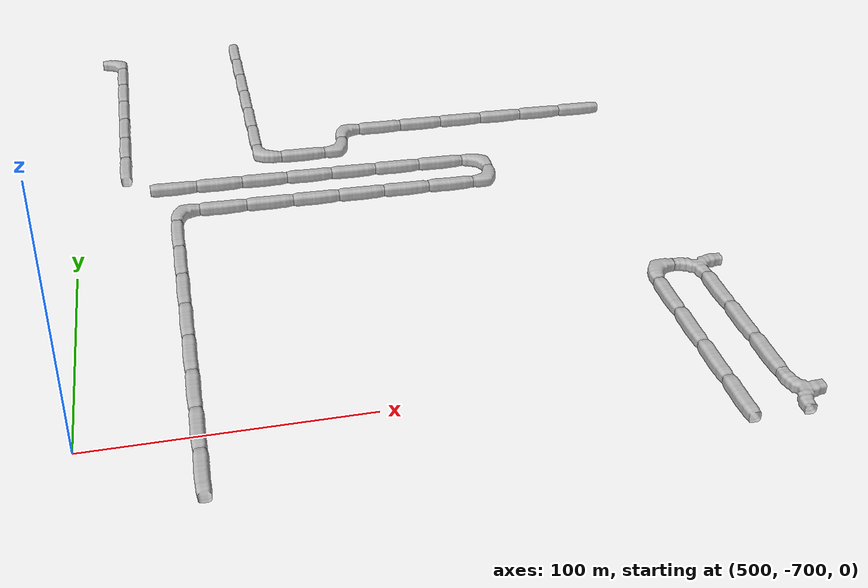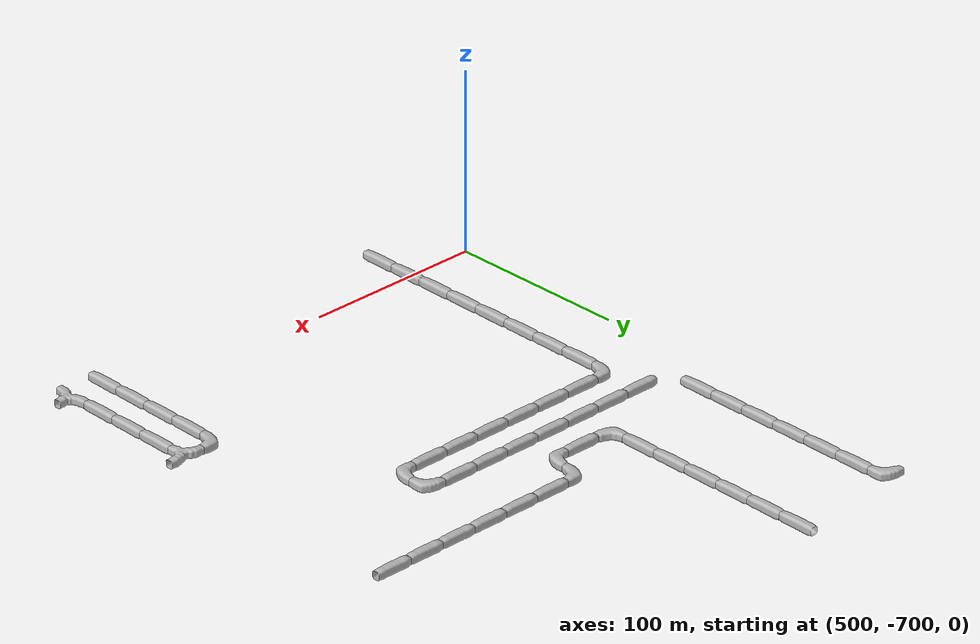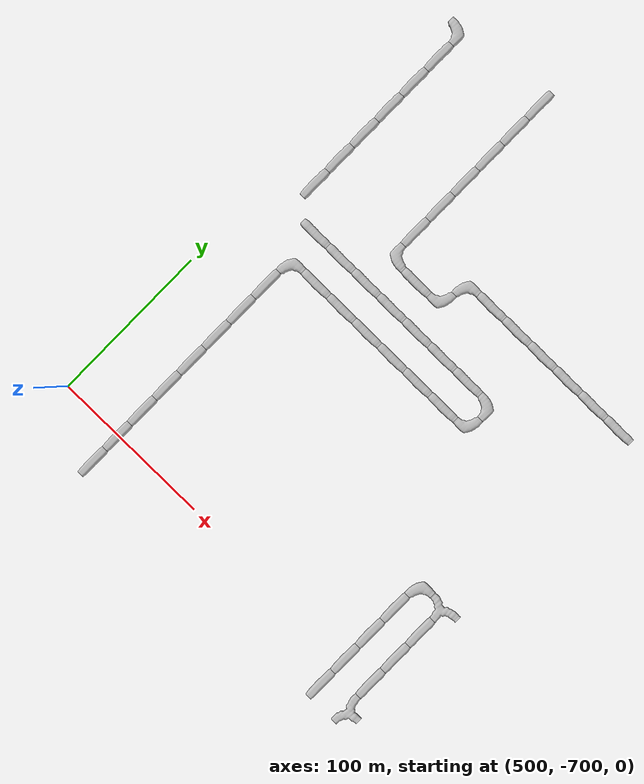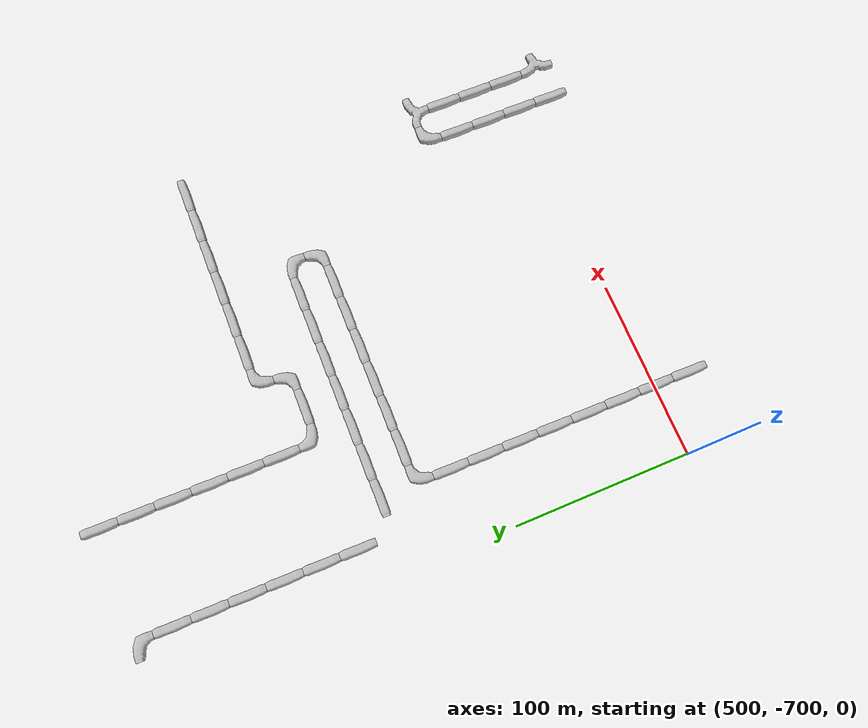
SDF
<sdf version="1.6">
 <world name="cave_32000_2">
  <include>
   <static>true</static>
   <name>cave_37_-32</name>
   <pose>740 -640 0 0 0 3.141592653589793</pose>
   <uri>model://cave_3way_20m</uri>
  </include>
  <include>
   <static>true</static>
   <name>cave_37_-33</name>
   <pose>740 -660 0 0 0 0.0</pose>
   <uri>model://cave_straight_20m</uri>
  </include>
  <include>
   <static>true</static>
   <name>cave_37_-34</name>
   <pose>740 -680 0 0 0 0.0</pose>
   <uri>model://cave_straight_20m</uri>
  </include>
  <include>
   <static>true</static>
   <name>cave_37_-35</name>
   <pose>740 -700 0 0 0 0.0</pose>
   <uri>model://cave_straight_20m</uri>
  </include>
  <include>
   <static>true</static>
   <name>cave_37_-36</name>
   <pose>740 -720 0 0 0 -1.5707963267948966</pose>
   <uri>model://cave_3way_20m</uri>
  </include>
  <include>
   <static>true</static>
   <name>cave_36_-32</name>
   <pose>720 -640 0 0 0 -1.5707963267948966</pose>
   <uri>model://cave_L_20m</uri>
  </include>
  <include>
   <static>true</static>
   <name>cave_36_-33</name>
   <pose>720 -660 0 0 0 0.0</pose>
   <uri>model://cave_straight_20m</uri>
  </include>
  <include>
   <static>true</static>
   <name>cave_36_-34</name>
   <pose>720 -680 0 0 0 0.0</pose>
   <uri>model://cave_straight_20m</uri>
  </include>
  <include>
   <static>true</static>
   <name>cave_36_-35</name>
   <pose>720 -700 0 0 0 0.0</pose>
   <uri>model://cave_straight_20m</uri>
  </include>
  <include>
   <static>true</static>
   <name>cave_36_-36</name>
   <pose>720 -720 0 0 0 0.0</pose>
   <uri>model://cave_straight_20m</uri>
  </include>
  <include>
   <static>true</static>
   <name>cave_27_-36</name>
   <pose>540 -720 0 0 0 0.0</pose>
   <uri>model://cave_straight_20m</uri>
  </include>
  <include>
   <static>true</static>
   <name>cave_27_-35</name>
   <pose>540 -700 0 0 0 0.0</pose>
   <uri>model://cave_straight_20m</uri>
  </include>
  <include>
   <static>true</static>
   <name>cave_27_-34</name>
   <pose>540 -680 0 0 0 0.0</pose>
   <uri>model://cave_straight_20m</uri>
  </include>
  <include>
   <static>true</static>
   <name>cave_27_-33</name>
   <pose>540 -660 0 0 0 0.0</pose>
   <uri>model://cave_straight_20m</uri>
  </include>
  <include>
   <static>true</static>
   <name>cave_27_-32</name>
   <pose>540 -640 0 0 0 0.0</pose>
   <uri>model://cave_straight_20m</uri>
  </include>
  <include>
   <static>true</static>
   <name>cave_27_-31</name>
   <pose>540 -620 0 0 0 0.0</pose>
   <uri>model://cave_straight_20m</uri>
  </include>
  <include>
   <static>true</static>
   <name>cave_27_-30</name>
   <pose>540 -600 0 0 0 0.0</pose>
   <uri>model://cave_straight_20m</uri>
  </include>
  <include>
   <static>true</static>
   <name>cave_27_-29</name>
   <pose>540 -580 0 0 0 0.0</pose>
   <uri>model://cave_straight_20m</uri>
  </include>
  <include>
   <static>true</static>
   <name>cave_27_-28</name>
   <pose>540 -560 0 0 0 -1.5707963267948966</pose>
   <uri>model://cave_L_20m</uri>
  </include>
  <include>
   <static>true</static>
   <name>cave_28_-28</name>
   <pose>560 -560 0 0 0 1.5707963267948966</pose>
   <uri>model://cave_straight_20m</uri>
  </include>
  <include>
   <static>true</static>
   <name>cave_29_-28</name>
   <pose>580 -560 0 0 0 1.5707963267948966</pose>
   <uri>model://cave_straight_20m</uri>
  </include>
  <include>
   <static>true</static>
   <name>cave_30_-28</name>
   <pose>600 -560 0 0 0 1.5707963267948966</pose>
   <uri>model://cave_straight_20m</uri>
  </include>
  <include>
   <static>true</static>
   <name>cave_31_-28</name>
   <pose>620 -560 0 0 0 1.5707963267948966</pose>
   <uri>model://cave_straight_20m</uri>
  </include>
  <include>
   <static>true</static>
   <name>cave_32_-28</name>
   <pose>640 -560 0 0 0 1.5707963267948966</pose>
   <uri>model://cave_straight_20m</uri>
  </include>
  <include>
   <static>true</static>
   <name>cave_33_-28</name>
   <pose>660 -560 0 0 0 1.5707963267948966</pose>
   <uri>model://cave_straight_20m</uri>
  </include>
  <include>
   <static>true</static>
   <name>cave_34_-28</name>
   <pose>680 -560 0 0 0 1.5707963267948966</pose>
   <uri>model://cave_L_20m</uri>
  </include>
  <include>
   <static>true</static>
   <name>cave_34_-27</name>
   <pose>680 -540 0 0 0 3.141592653589793</pose>
   <uri>model://cave_L_20m</uri>
  </include>
  <include>
   <static>true</static>
   <name>cave_33_-27</name>
   <pose>660 -540 0 0 0 1.5707963267948966</pose>
   <uri>model://cave_straight_20m</uri>
  </include>
  <include>
   <static>true</static>
   <name>cave_32_-27</name>
   <pose>640 -540 0 0 0 1.5707963267948966</pose>
   <uri>model://cave_straight_20m</uri>
  </include>
  <include>
   <static>true</static>
   <name>cave_31_-27</name>
   <pose>620 -540 0 0 0 1.5707963267948966</pose>
   <uri>model://cave_straight_20m</uri>
  </include>
  <include>
   <static>true</static>
   <name>cave_30_-27</name>
   <pose>600 -540 0 0 0 1.5707963267948966</pose>
   <uri>model://cave_straight_20m</uri>
  </include>
  <include>
   <static>true</static>
   <name>cave_29_-27</name>
   <pose>580 -540 0 0 0 1.5707963267948966</pose>
   <uri>model://cave_straight_20m</uri>
  </include>
  <include>
   <static>true</static>
   <name>cave_28_-27</name>
   <pose>560 -540 0 0 0 1.5707963267948966</pose>
   <uri>model://cave_straight_20m</uri>
  </include>
  <include>
   <static>true</static>
   <name>cave_27_-27</name>
   <pose>540 -540 0 0 0 1.5707963267948966</pose>
   <uri>model://cave_straight_20m</uri>
  </include>
  <include>
   <static>true</static>
   <name>cave_26_-26</name>
   <pose>520 -520 0 0 0 0.0</pose>
   <uri>model://cave_straight_20m</uri>
  </include>
  <include>
   <static>true</static>
   <name>cave_26_-25</name>
   <pose>520 -500 0 0 0 0.0</pose>
   <uri>model://cave_straight_20m</uri>
  </include>
  <include>
   <static>true</static>
   <name>cave_26_-24</name>
   <pose>520 -480 0 0 0 0.0</pose>
   <uri>model://cave_straight_20m</uri>
  </include>
  <include>
   <static>true</static>
   <name>cave_26_-23</name>
   <pose>520 -460 0 0 0 0.0</pose>
   <uri>model://cave_straight_20m</uri>
  </include>
  <include>
   <static>true</static>
   <name>cave_26_-22</name>
   <pose>520 -440 0 0 0 0.0</pose>
   <uri>model://cave_straight_20m</uri>
  </include>
  <include>
   <static>true</static>
   <name>cave_26_-21</name>
   <pose>520 -420 0 0 0 0.0</pose>
   <uri>model://cave_straight_20m</uri>
  </include>
  <include>
   <static>true</static>
   <name>cave_26_-20</name>
   <pose>520 -400 0 0 0 3.141592653589793</pose>
   <uri>model://cave_L_20m</uri>
  </include>
  <include>
   <static>true</static>
   <name>cave_29_-20</name>
   <pose>580 -400 0 0 0 0.0</pose>
   <uri>model://cave_straight_20m</uri>
  </include>
  <include>
   <static>true</static>
   <name>cave_29_-21</name>
   <pose>580 -420 0 0 0 0.0</pose>
   <uri>model://cave_straight_20m</uri>
  </include>
  <include>
   <static>true</static>
   <name>cave_29_-22</name>
   <pose>580 -440 0 0 0 0.0</pose>
   <uri>model://cave_straight_20m</uri>
  </include>
  <include>
   <static>true</static>
   <name>cave_29_-23</name>
   <pose>580 -460 0 0 0 0.0</pose>
   <uri>model://cave_straight_20m</uri>
  </include>
  <include>
   <static>true</static>
   <name>cave_29_-24</name>
   <pose>580 -480 0 0 0 0.0</pose>
   <uri>model://cave_straight_20m</uri>
  </include>
  <include>
   <static>true</static>
   <name>cave_29_-25</name>
   <pose>580 -500 0 0 0 0.0</pose>
   <uri>model://cave_straight_20m</uri>
  </include>
  <include>
   <static>true</static>
   <name>cave_29_-26</name>
   <pose>580 -520 0 0 0 0.0</pose>
   <uri>model://cave_L_20m</uri>
  </include>
  <include>
   <static>true</static>
   <name>cave_30_-26</name>
   <pose>600 -520 0 0 0 1.5707963267948966</pose>
   <uri>model://cave_straight_20m</uri>
  </include>
  <include>
   <static>true</static>
   <name>cave_31_-26</name>
   <pose>620 -520 0 0 0 1.5707963267948966</pose>
   <uri>model://cave_L_20m</uri>
  </include>
  <include>
   <static>true</static>
   <name>cave_31_-25</name>
   <pose>620 -500 0 0 0 -1.5707963267948966</pose>
   <uri>model://cave_L_20m</uri>
  </include>
  <include>
   <static>true</static>
   <name>cave_32_-25</name>
   <pose>640 -500 0 0 0 1.5707963267948966</pose>
   <uri>model://cave_straight_20m</uri>
  </include>
  <include>
   <static>true</static>
   <name>cave_33_-25</name>
   <pose>660 -500 0 0 0 1.5707963267948966</pose>
   <uri>model://cave_straight_20m</uri>
  </include>
  <include>
   <static>true</static>
   <name>cave_34_-25</name>
   <pose>680 -500 0 0 0 1.5707963267948966</pose>
   <uri>model://cave_straight_20m</uri>
  </include>
  <include>
   <static>true</static>
   <name>cave_35_-25</name>
   <pose>700 -500 0 0 0 1.5707963267948966</pose>
   <uri>model://cave_straight_20m</uri>
  </include>
  <include>
   <static>true</static>
   <name>cave_36_-25</name>
   <pose>720 -500 0 0 0 1.5707963267948966</pose>
   <uri>model://cave_straight_20m</uri>
  </include>
  <include>
   <static>true</static>
   <name>cave_37_-25</name>
   <pose>740 -500 0 0 0 1.5707963267948966</pose>
   <uri>model://cave_straight_20m</uri>
  </include>
 </world>
</sdf>
